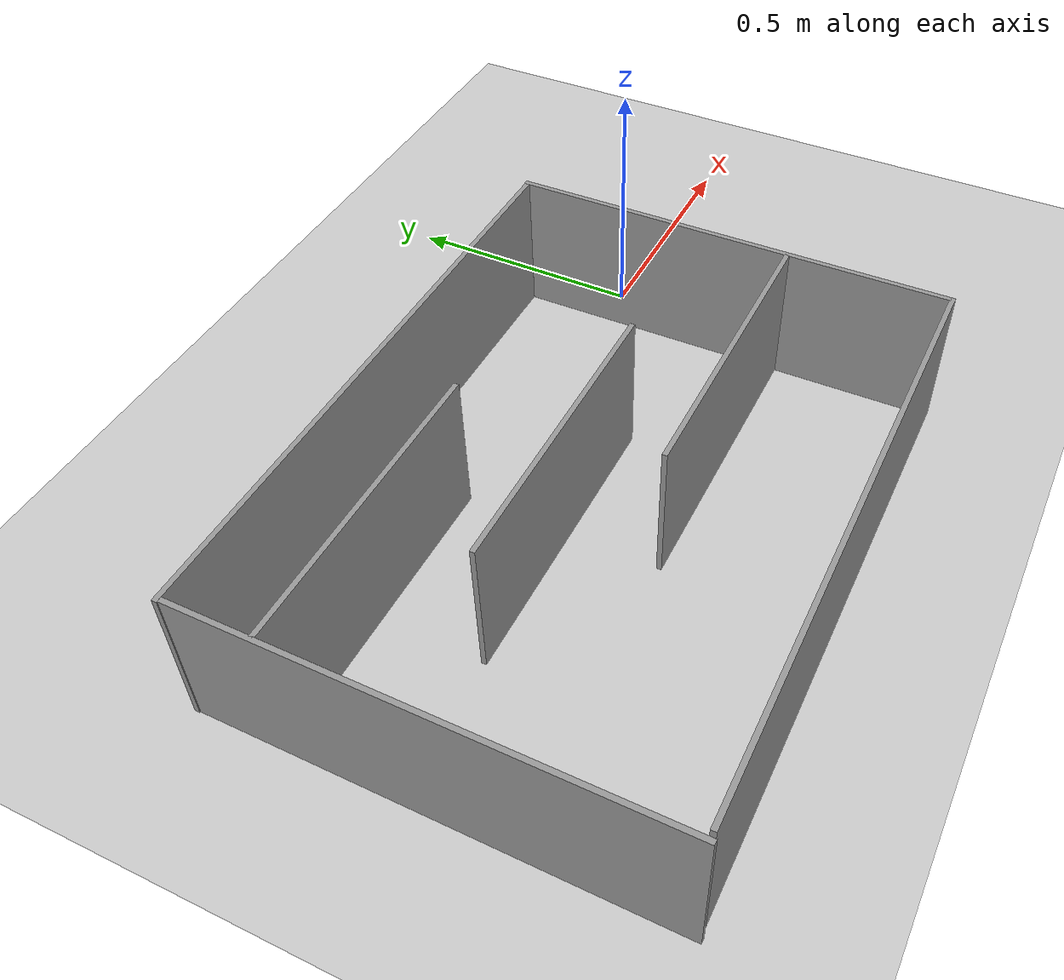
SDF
<sdf version="1.7">
 <world name="default">
  <light name="sun" type="directional">
   <pose>0 0 10 0 -0 0</pose>
   <diffuse>0.8 0.8 0.8 1</diffuse>
   <specular>0.2 0.2 0.2 1</specular>
   <attenuation>
    <range>1000</range>
    <constant>0.9</constant>
    <linear>0.01</linear>
    <quadratic>0.001</quadratic>
   </attenuation>
   <direction>-0.5 0.1 -0.9</direction>
   <spot><inner_angle>0</inner_angle><outer_angle>0</outer_angle><falloff>0</falloff></spot>
  </light>
  <model name="ground_plane">
   <static>1</static>
   <link name="link">
    <collision name="collision">
     <geometry><plane><normal>0 0 1</normal><size>100 100</size></plane></geometry>
     <surface>
      <contact><collide_bitmask>65535</collide_bitmask></contact>
      <friction><ode><mu>100</mu><mu2>50</mu2></ode></friction>
     </surface>
    </collision>
    <visual name="visual">
     <cast_shadows>0</cast_shadows>
     <geometry><plane><normal>0 0 1</normal><size>100 100</size></plane></geometry>
     <material>
      <script><uri>file://media/materials/scripts/gazebo.material</uri><name>Gazebo/Grey</name></script>
     </material>
    </visual>
   </link>
  </model>
  <gravity>0 0 -9.8</gravity>
  <magnetic_field>6e-06 2.3e-05 -4.2e-05</magnetic_field>
  <atmosphere type="adiabatic"/>
  <physics type="ode">
   <max_step_size>0.001</max_step_size>
   <real_time_factor>1</real_time_factor>
   <real_time_update_rate>1000</real_time_update_rate>
  </physics>
  <scene><ambient>0.4 0.4 0.4 1</ambient><background>0.7 0.7 0.7 1</background><shadows>1</shadows></scene>
  <spherical_coordinates>
   <surface_model>EARTH_WGS84</surface_model>
   <latitude_deg>0</latitude_deg>
   <longitude_deg>0</longitude_deg>
   <elevation>0</elevation>
   <heading_deg>0</heading_deg>
  </spherical_coordinates>
  <model name="6">
   <pose>0.193843 0.027559 0 0 -0 0</pose>
   <link name="Wall_35">
    <collision name="Wall_35_Collision">
     <geometry><box><size>0.6 0.01 0.3</size></box></geometry>
     <pose>0 0 0.15 0 -0 0</pose>
    </collision>
    <visual name="Wall_35_Visual">
     <pose>0 0 0.15 0 -0 0</pose>
     <geometry><box><size>0.6 0.01 0.3</size></box></geometry>
     <material>
      <script><uri>file://media/materials/scripts/gazebo.material</uri><name>Gazebo/Grey</name></script>
      <ambient>1 1 1 1</ambient>
     </material>
     <meta><layer>0</layer></meta>
    </visual>
    <pose>-0.572065 -0.414891 0 0 -0 0</pose>
   </link>
   <static>1</static>
  </model>
  <model name="fusta9_0">
   <pose>-2.15577 0.702157 0 0 -0 1.57816</pose>
   <link name="Wall_39">
    <collision name="Wall_39_Collision">
     <geometry><box><size>0.9 0.01 0.3</size></box></geometry>
     <pose>0 0 0.15 0 -0 0</pose>
    </collision>
    <visual name="Wall_39_Visual">
     <pose>0 0 0.15 0 -0 0</pose>
     <geometry><box><size>0.9 0.01 0.3</size></box></geometry>
     <material>
      <script><uri>file://media/materials/scripts/gazebo.material</uri><name>Gazebo/Grey</name></script>
      <ambient>1 1 1 1</ambient>
     </material>
     <meta><layer>0</layer></meta>
    </visual>
    <pose>-0.9785 -2.0715 0 0 -0 0</pose>
   </link>
   <static>1</static>
  </model>
  <model name="12">
   <pose>-0.574646 0.288392 0 0 -0 0</pose>
   <link name="Wall_31">
    <collision name="Wall_31_Collision">
     <geometry><box><size>1.2 0.01 0.3</size></box></geometry>
     <pose>0 0 0.15 0 -0 0</pose>
    </collision>
    <visual name="Wall_31_Visual">
     <pose>0 0 0.15 0 -0 0</pose>
     <geometry><box><size>1.2 0.01 0.3</size></box></geometry>
     <material>
      <script><uri>file://media/materials/scripts/gazebo.material</uri><name>Gazebo/Grey</name></script>
      <ambient>1 1 1 1</ambient>
     </material>
     <meta><layer>0</layer></meta>
    </visual>
    <pose>-0.111 -0.106 0 0 -0 0</pose>
   </link>
   <static>1</static>
  </model>
  <model name="fusta9">
   <pose>0.78711 -1.25905 0 0 0 -1.5746</pose>
   <link name="Wall_39">
    <collision name="Wall_39_Collision">
     <geometry><box><size>0.9 0.01 0.3</size></box></geometry>
     <pose>0 0 0.15 0 -0 0</pose>
    </collision>
    <visual name="Wall_39_Visual">
     <pose>0 0 0.15 0 -0 0</pose>
     <geometry><box><size>0.9 0.01 0.3</size></box></geometry>
     <material>
      <script><uri>file://media/materials/scripts/gazebo.material</uri><name>Gazebo/Grey</name></script>
      <ambient>1 1 1 1</ambient>
     </material>
     <meta><layer>0</layer></meta>
    </visual>
    <pose>-0.9785 -2.0715 0 0 -0 0</pose>
   </link>
   <static>1</static>
  </model>
  <model name="12_0">
   <pose>-0.557831 -0.607814 0 0 -0 0</pose>
   <link name="Wall_31">
    <collision name="Wall_31_Collision">
     <geometry><box><size>1.2 0.01 0.3</size></box></geometry>
     <pose>0 0 0.15 0 -0 0</pose>
    </collision>
    <visual name="Wall_31_Visual">
     <pose>0 0 0.15 0 -0 0</pose>
     <geometry><box><size>1.2 0.01 0.3</size></box></geometry>
     <material>
      <script><uri>file://media/materials/scripts/gazebo.material</uri><name>Gazebo/Grey</name></script>
      <ambient>1 1 1 1</ambient>
     </material>
     <meta><layer>0</layer></meta>
    </visual>
    <pose>-0.111 -0.106 0 0 -0 0</pose>
   </link>
   <static>1</static>
  </model>
  <model name="6_0">
   <pose>-0.404495 0.426233 0 0 -0 0</pose>
   <link name="Wall_35">
    <collision name="Wall_35_Collision">
     <geometry><box><size>0.6 0.01 0.3</size></box></geometry>
     <pose>0 0 0.15 0 -0 0</pose>
    </collision>
    <visual name="Wall_35_Visual">
     <pose>0 0 0.15 0 -0 0</pose>
     <geometry><box><size>0.6 0.01 0.3</size></box></geometry>
     <material>
      <script><uri>file://media/materials/scripts/gazebo.material</uri><name>Gazebo/Grey</name></script>
      <ambient>1 1 1 1</ambient>
     </material>
     <meta><layer>0</layer></meta>
    </visual>
    <pose>-0.572065 -0.414891 0 0 -0 0</pose>
   </link>
   <static>1</static>
  </model>
  <model name="6_1">
   <pose>-0.125079 0.214118 0 0 -0 0</pose>
   <link name="Wall_35">
    <collision name="Wall_35_Collision">
     <geometry><box><size>0.6 0.01 0.3</size></box></geometry>
     <pose>0 0 0.15 0 -0 0</pose>
    </collision>
    <visual name="Wall_35_Visual">
     <pose>0 0 0.15 0 -0 0</pose>
     <geometry><box><size>0.6 0.01 0.3</size></box></geometry>
     <material>
      <script><uri>file://media/materials/scripts/gazebo.material</uri><name>Gazebo/Grey</name></script>
      <ambient>1 1 1 1</ambient>
     </material>
     <meta><layer>0</layer></meta>
    </visual>
    <pose>-0.572065 -0.414891 0 0 -0 0</pose>
   </link>
   <static>1</static>
  </model>
 </world>
</sdf>
